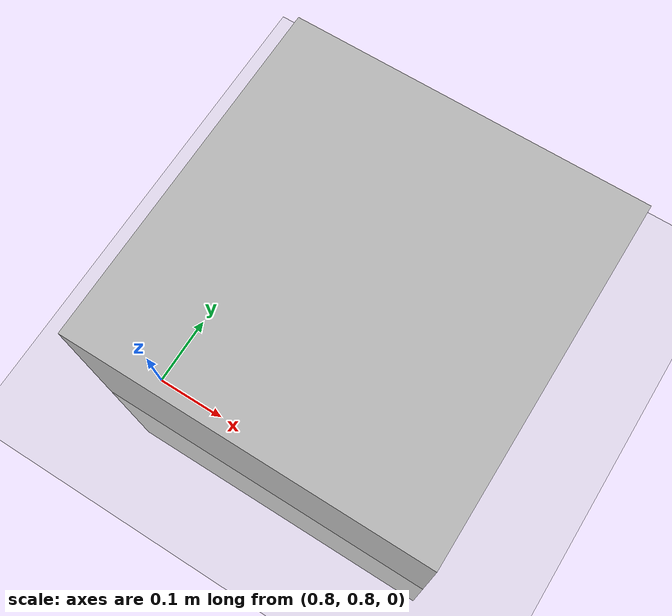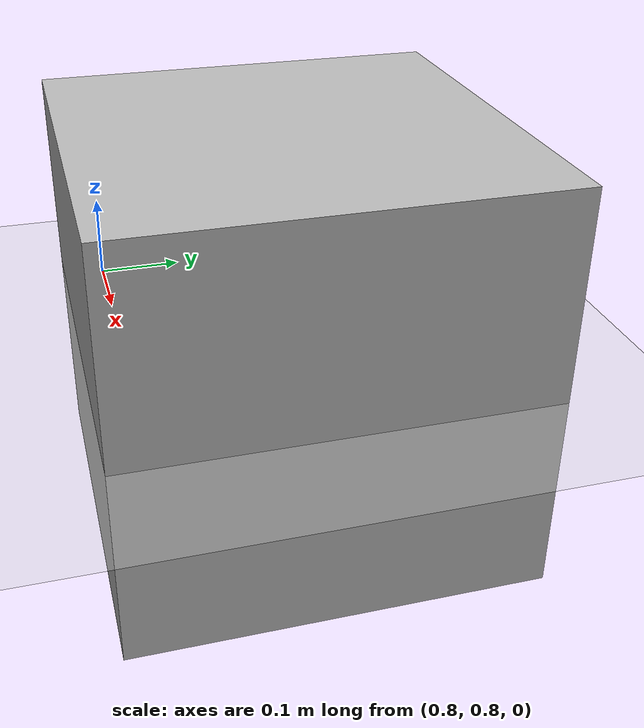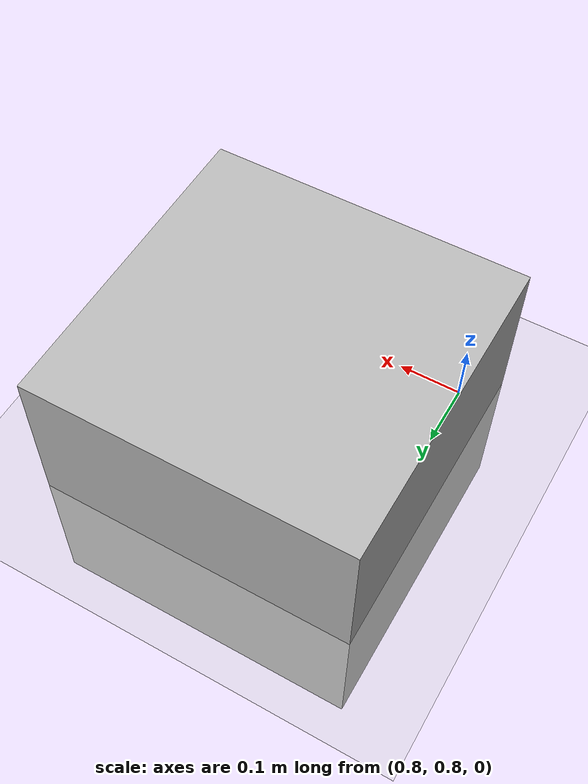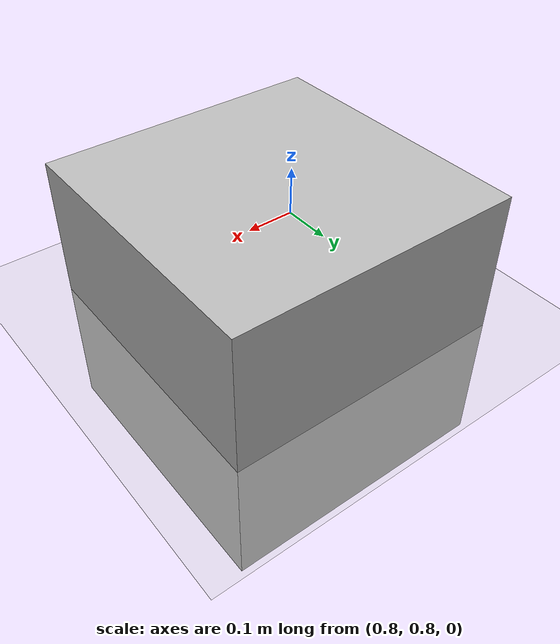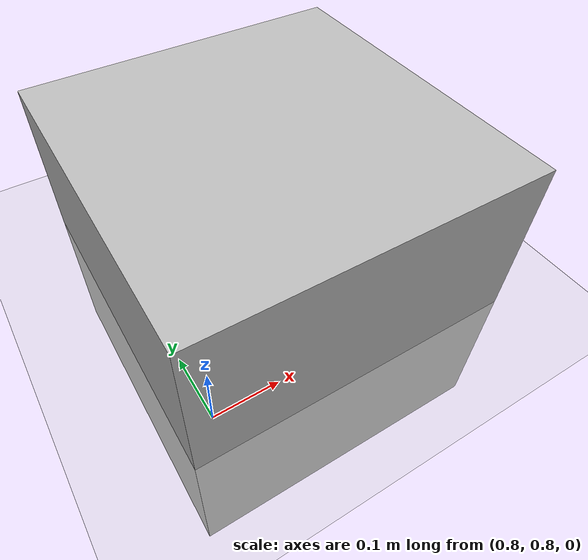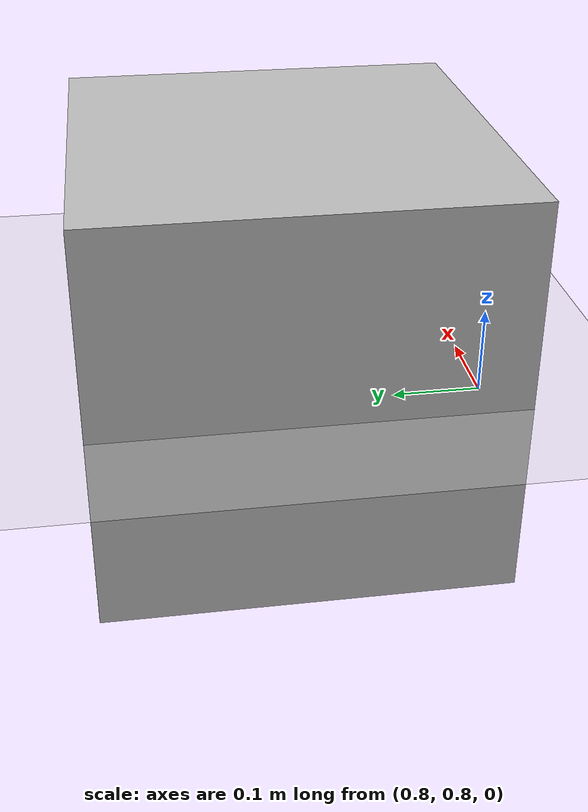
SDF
<?xml version="1.0" ?>
<sdf version="1.4">
  <world name="custom_world">
    <physics type="ode">
      <gravity>0 0 -9.81</gravity>
      <ode>
        <solver>
          <type>quick</type>
          <iters>20</iters>
          <sor>1.0</sor>
        </solver>
        <constraints>
          <cfm>0.0</cfm>
          <erp>0.2</erp>
          <contact_max_correcting_vel>100.0</contact_max_correcting_vel>
          <contact_surface_layer>0.0</contact_surface_layer>
        </constraints>
      </ode>
      <real_time_update_rate>1000</real_time_update_rate>
      <max_step_size>0.001</max_step_size>
    </physics>
    <!-- A global light source -->
    <include>
      <uri>model://sun</uri>
    </include>
    <!-- A ground plane -->
    <include>
      <uri>model://ground_plane</uri>
    </include>
    <!-- A custom object -->
    <include>
      <uri>model://custom_object</uri>
      <pose>1 1 0 0 0 0</pose>
    </include>
  </world>
</sdf>

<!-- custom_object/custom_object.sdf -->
<sdf version='1.4'>
  <model name="custom_object">
      <static>0</static>
      <link name='link'>
        <inertial>
          <mass>0.25</mass>
          <inertia>
            <ixx>0.000041667</ixx>
            <ixy>0.000000</ixy>
            <ixz>0.000000</ixz>
            <iyy>0.000041667</iyy>
            <iyz>0.000000</iyz>
            <izz>0.000041667</izz>
          </inertia>
        </inertial>
        <visual name='visual'>
          <geometry>
            <box>
              <size>0.5 0.5 0.5</size>
            </box>
          </geometry>
        </visual>
        <collision name='collision'>
          <geometry>
            <box>
              <size>0.5 0.5 0.5</size>
            </box>
          </geometry>
        </collision>
        <gravity>1</gravity>
      </link>
  </model>
</sdf>
